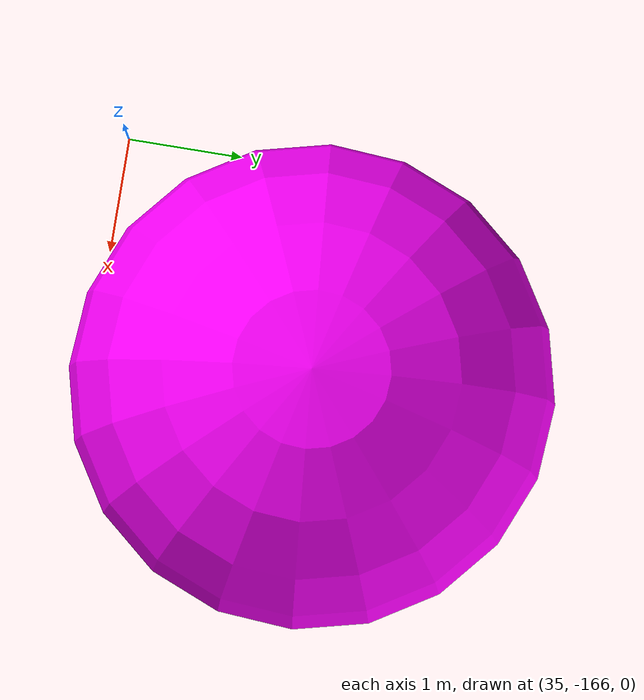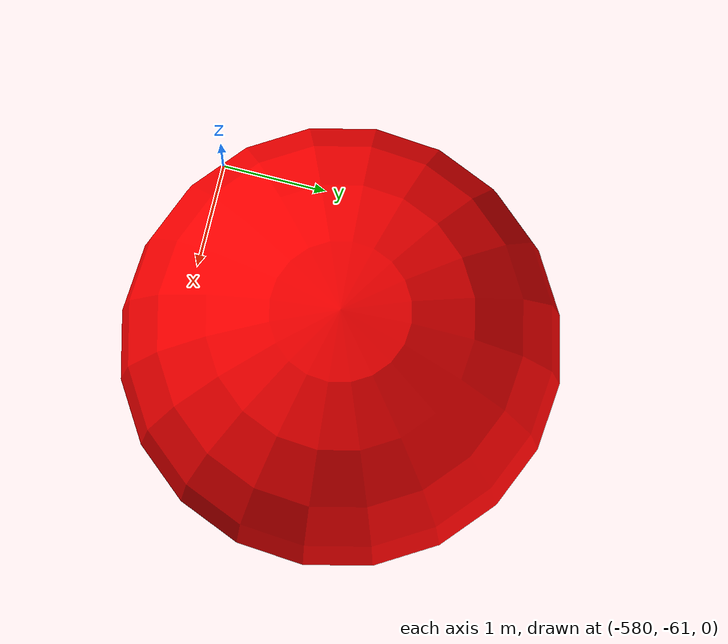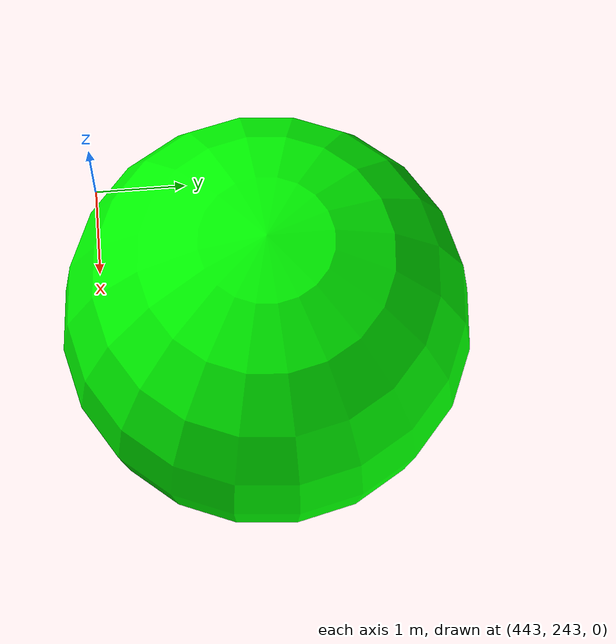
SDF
<sdf version="1.11">
 <world name="test_multi_street_spawn">
  <physics type="ode" name="default">
   <max_step_size>0.001</max_step_size>
   <real_time_factor>1.0</real_time_factor>
   <gravity>0 0 -9.81</gravity>
  </physics>
  <plugin filename="gz-sim-physics-system" name="gz::sim::systems::Physics"/>
  <plugin filename="gz-sim-sensors-system" name="gz::sim::systems::Sensors">
   <render_engine>vulkan</render_engine>
  </plugin>
  <plugin filename="gz-sim-scene-broadcaster-system" name="gz::sim::systems::SceneBroadcaster"/>
  <model name="marker_street_0">
   <static>true</static>
   <link name="link">
    <visual name="visual">
     <geometry><sphere><radius>2.0</radius></sphere></geometry>
     <material><ambient>1.0 0.0 0.0 1</ambient><diffuse>1.0 0.0 0.0 1</diffuse></material>
    </visual>
    <collision name="collision"><geometry><sphere><radius>2.0</radius></sphere></geometry></collision>
   </link>
   <pose>-578.256524 -59.403354 2.000000 0 0 0.079583</pose>
  </model>
  <model name="marker_street_1">
   <static>true</static>
   <link name="link">
    <visual name="visual">
     <geometry><sphere><radius>2.0</radius></sphere></geometry>
     <material><ambient>0.0 1.0 0.0 1</ambient><diffuse>0.0 1.0 0.0 1</diffuse></material>
    </visual>
    <collision name="collision"><geometry><sphere><radius>2.0</radius></sphere></geometry></collision>
   </link>
   <pose>445.473142 244.726093 2.000000 0 0 -3.058752</pose>
  </model>
  <model name="marker_street_2">
   <static>true</static>
   <link name="link">
    <visual name="visual">
     <geometry><sphere><radius>2.0</radius></sphere></geometry>
     <material><ambient>0.0 0.0 1.0 1</ambient><diffuse>0.0 0.0 1.0 1</diffuse></material>
    </visual>
    <collision name="collision"><geometry><sphere><radius>2.0</radius></sphere></geometry></collision>
   </link>
   <pose>-488.865479 98.290031 2.000000 0 0 0.070203</pose>
  </model>
  <model name="marker_street_3">
   <static>true</static>
   <link name="link">
    <visual name="visual">
     <geometry><sphere><radius>2.0</radius></sphere></geometry>
     <material><ambient>1.0 1.0 0.0 1</ambient><diffuse>1.0 1.0 0.0 1</diffuse></material>
    </visual>
    <collision name="collision"><geometry><sphere><radius>2.0</radius></sphere></geometry></collision>
   </link>
   <pose>329.429707 -227.635678 2.000000 0 0 -3.076489</pose>
  </model>
  <model name="marker_street_4">
   <static>true</static>
   <link name="link">
    <visual name="visual">
     <geometry><sphere><radius>2.0</radius></sphere></geometry>
     <material><ambient>1.0 0.0 1.0 1</ambient><diffuse>1.0 0.0 1.0 1</diffuse></material>
    </visual>
    <collision name="collision"><geometry><sphere><radius>2.0</radius></sphere></geometry></collision>
   </link>
   <pose>37.010761 -164.052202 2.000000 0 0 -3.060592</pose>
  </model>
 </world>
</sdf>
